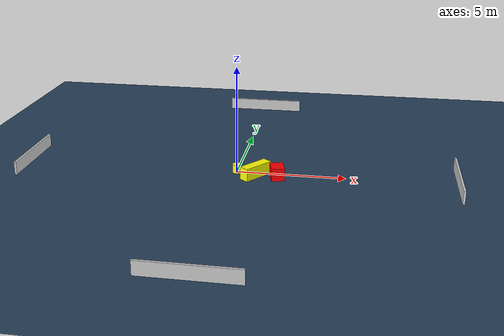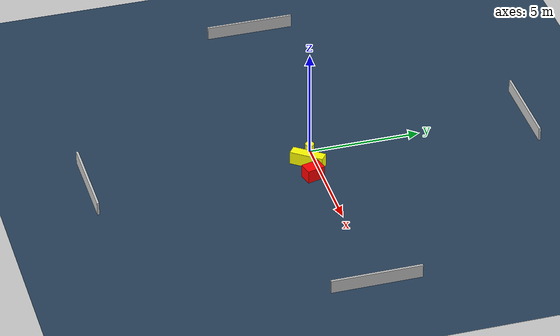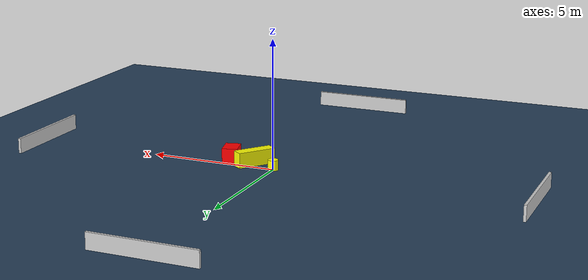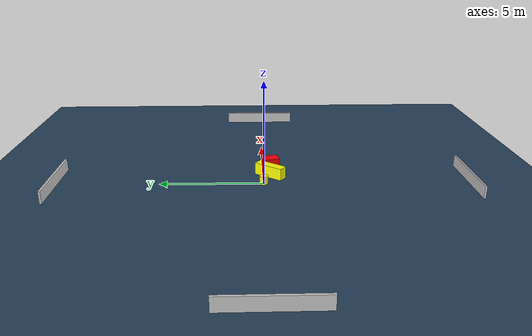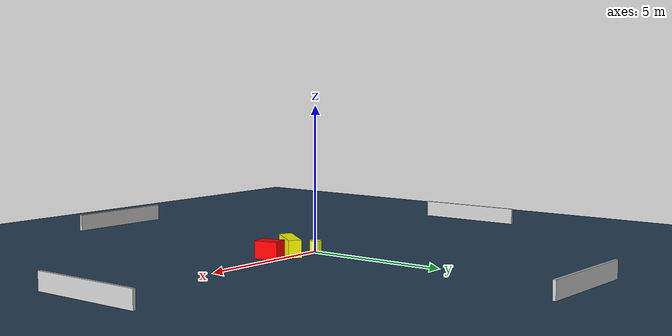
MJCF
<?xml version="1.0" ?>
<mujoco model="generated_environment">
  <option timestep="0.01" integrator="RK4" cone="elliptic"/>
  <default>
    <geom density="1"/>
  </default>
  <asset>
    <texture builtin="gradient" height="3072" name="skybox" rgb1="0.3 0.5 0.7" rgb2="0 0 0" type="skybox" width="512"/>
    <texture builtin="checker" height="300" name="groundplane" rgb1="0.2 0.3 0.4" rgb2="0.1 0.2 0.3" type="2d" width="300"/>
    <material name="groundplane" reflectance="0.2" texrepeat="5 5" texture="groundplane"/>
  </asset>
  <worldbody>
    <light dir="0 0 -1" directional="true" pos="0 0 1.5"/>
    <geom condim="3" friction="0.5 0.005 0.001" material="groundplane" name="floor" pos="0 0 0" size="0 0 0.05" type="plane"/>
    <body name="walls">
      <geom name="wall_1" condim="4" pos="-10.0 0.0 0.3" rgba="0.800000011920929 0.800000011920929 0.800000011920929 1.0" size="0.05 2.0 0.3" type="box"/>
      <geom name="wall_2" condim="4" pos="10.0 0.0 0.3" rgba="0.800000011920929 0.800000011920929 0.800000011920929 1.0" size="0.05 2.0 0.3" type="box"/>
      <geom name="wall_3" condim="4" pos="0.0 -10.0 0.3" rgba="0.800000011920929 0.800000011920929 0.800000011920929 1.0" size="2.0 0.05 0.3" type="box"/>
      <geom name="wall_4" condim="4" pos="0.0 10.0 0.3" rgba="0.800000011920929 0.800000011920929 0.800000011920929 1.0" size="2.0 0.05 0.3" type="box"/>
    </body>
    <body name="robot">
      <joint name="joint_x" type="slide" pos="0 0 0" axis="1 0 0"/>
      <joint name="joint_y" type="slide" pos="0 0 0" axis="0 1 0"/>
      <geom name="robot" type="cylinder" pos="0.0 0.0 0.2" size="0.2 0.2 0.0" mass="5.0" friction="1.0 0.005 0.0001" condim="4" rgba="1.0 1.0 0.0 1.0"/>
    </body>
    <body name="obstacle_1_movable">
      <geom name="obstacle_1_movable" condim="4" pos="0.9263521540784699 -0.35049616075392914 0.3" euler="0 0 142.75257095295285" friction="0.0 0.005 0.001" rgba="1.0 1.0 0.0 1.0" size="0.22642833964314235 0.7611372644457448 0.3" type="box" mass="0.1"/>
      <joint type="free"/>
    </body>
    <body name="obstacle_2_static">
      <geom name="obstacle_2_static" condim="4" pos="1.9180722551099318 -0.4022070714041484 0.3" euler="0 0 104.07034349007967" friction="0.0 0.005 0.001" rgba="1.0 0.0 0.0 1.0" size="0.4079740582065806 0.29866648103893173 0.3" type="box"/>
    </body>
  </worldbody>
  <actuator>
    <motor name="actuator_x" joint="joint_x" gear="1" ctrlrange="-1 1"/>
    <motor name="actuator_y" joint="joint_y" gear="1" ctrlrange="-1 1"/>
  </actuator>
</mujoco>
